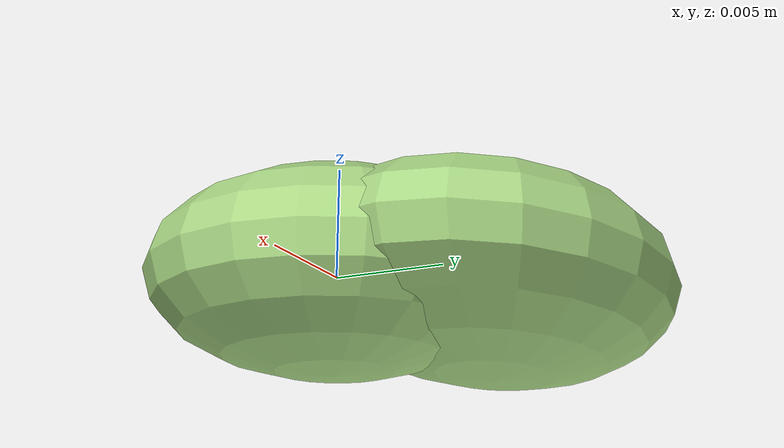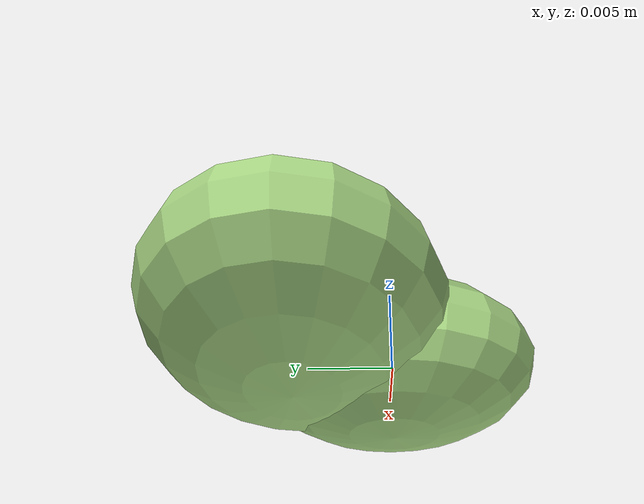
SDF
<?xml version="1.0" ?>
<!-- |    This document was autogenerated by xmacro from data/veggie_template/veggie_base.sdf.xacro  | -->
<!-- |    EDITING THIS FILE BY HAND IS NOT RECOMMENDED                                               | -->
<sdf version="1.8">
	<!-- Parameters -->
	<!-- Base -->
	<!-- Joint 0 -->
	<!-- Link 1 -->
	<!-- Joint 1 -->
	<!-- Link 2 -->
	<!-- Primitives -->
	<!-- All dimensions are half -->
	<!-- Object -->
	<model name="veggie">
		<!-- link0 -->
		<link name="link0">
			<inertial>
				<mass>0.0012133772824757642</mass>
				<inertia>
					<ixx>2.121138738881217e-08</ixx>
					<ixy>0</ixy>
					<ixz>0</ixz>
					<iyy>2.0271956255777543e-08</iyy>
					<iyz>0</iyz>
					<izz>3.225347159955378e-08</izz>
				</inertia>
			</inertial>
			<visual name="link0_visual">
				<pose>0 0 0 0 0 0</pose>
				<geometry>
					<ellipsoid>
						<radii>0.008032331591903294 0.008269793995264051 0.004360837611339844</radii>
					</ellipsoid>
				</geometry>
				<material>
					<ambient>0.659 0.839 0.514 1</ambient>
					<diffuse>0.659 0.839 0.514 1</diffuse>
					<specular>0 0 0 0</specular>
					<emissive>0 0 0 1</emissive>
				</material>
			</visual>
			<collision name="link0_collision">
				<pose>0 0 0 0 0 0 </pose>
				<geometry>
					<ellipsoid>
						<radii>0.008032331591903294 0.008269793995264051 0.004360837611339844</radii>
					</ellipsoid>
				</geometry>
			</collision>
		</link>
		<!-- link1 -->
		<joint name="joint0" type="fixed">
			<pose relative_to="link0">-0.005229648325431529 0.00529041242268682 0.0004384704950196844 0.0 0.0 0.0</pose>
			<parent>link0</parent>
			<child>link1</child>
		</joint>
		<link name="link1">
			<pose relative_to="joint0">0 0 0 0 0 0</pose>
			<inertial>
				<mass>0.0018367556019658927</mass>
				<inertia>
					<ixx>3.201045422047957e-08</ixx>
					<ixy>0</ixy>
					<ixz>0</ixz>
					<iyy>5.975496330324745e-08</iyy>
					<iyz>0</iyz>
					<izz>7.697406110935663e-08</izz>
				</inertia>
			</inertial>
			<visual name="link1_visual">
				<pose>0 0 0 0 0 0</pose>
				<geometry>
					<ellipsoid>
						<radii>0.01193867609682353 0.008185727060442521 0.0044869199224447705</radii>
					</ellipsoid>
				</geometry>
				<material>
					<ambient>0.659 0.839 0.514 1</ambient>
					<diffuse>0.659 0.839 0.514 1</diffuse>
					<specular>0 0 0 0</specular>
					<emissive>0 0 0 1</emissive>
				</material>
			</visual>
			<collision name="link1_collision">
				<pose>0 0 0 0 0 0 </pose>
				<geometry>
					<ellipsoid>
						<radii>0.01193867609682353 0.008185727060442521 0.0044869199224447705</radii>
					</ellipsoid>
				</geometry>
			</collision>
		</link>
		<!-- link2 -->
	</model>
</sdf>
